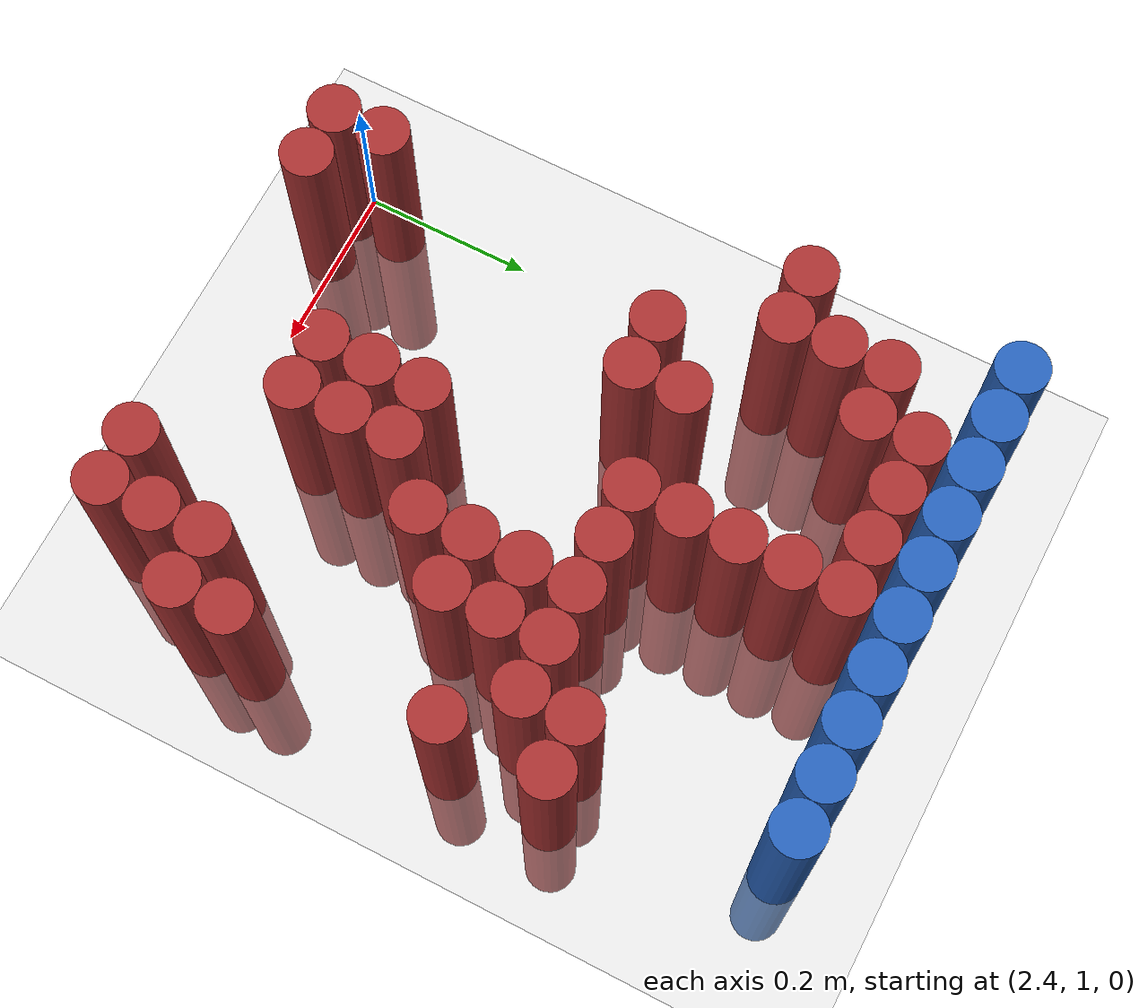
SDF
<sdf version="1.6">
 <world name="default">
  <model name="ground_plane">
   <static>1</static>
   <link name="link">
    <collision name="collision">
     <geometry><plane><normal>0 0 1</normal><size>100 100</size></plane></geometry>
     <surface><friction><ode><mu>100</mu><mu2>50</mu2></ode></friction></surface>
    </collision>
    <visual name="visual">
     <cast_shadows>0</cast_shadows>
     <geometry><plane><normal>0 0 1</normal><size>100 100</size></plane></geometry>
     <material>
      <script><uri>file://media/materials/scripts/gazebo.material</uri><name>Gazebo/Grey</name></script>
     </material>
    </visual>
   </link>
  </model>
  <model name="unit_cylinder_100">
   <static>1</static>
   <pose>2.370000 1.770000 0.000000 0.000000 0.000000 0.000000</pose>
   <link name="link">
    <inertial>
     <mass>1</mass>
     <inertia><ixx>0.145833</ixx><ixy>0</ixy><ixz>0</ixz><iyy>0.145833</iyy><iyz>0</iyz><izz>0.125</izz></inertia>
    </inertial>
    <collision name="collision">
     <geometry><cylinder><radius>0.030000</radius><length>0.5</length></cylinder></geometry>
    </collision>
    <visual name="visual">
     <geometry><cylinder><radius>0.030000</radius><length>0.5</length></cylinder></geometry>
     <material>
      <ambient>0.152000 0.379000 0.720000 1</ambient>
      <diffuse>0.152000 0.379000 0.720000 1</diffuse>
     </material>
     <material>
      <script><name>Gazebo/Grey</name><uri>file://media/materials/scripts/gazebo.material</uri></script>
     </material>
    </visual>
   </link>
  </model>
  <model name="unit_cylinder_101">
   <static>1</static>
   <pose>2.430000 1.770000 0.000000 0.000000 0.000000 0.000000</pose>
   <link name="link">
    <inertial>
     <mass>1</mass>
     <inertia><ixx>0.145833</ixx><ixy>0</ixy><ixz>0</ixz><iyy>0.145833</iyy><iyz>0</iyz><izz>0.125</izz></inertia>
    </inertial>
    <collision name="collision">
     <geometry><cylinder><radius>0.030000</radius><length>0.5</length></cylinder></geometry>
    </collision>
    <visual name="visual">
     <geometry><cylinder><radius>0.030000</radius><length>0.5</length></cylinder></geometry>
     <material>
      <ambient>0.152000 0.379000 0.720000 1</ambient>
      <diffuse>0.152000 0.379000 0.720000 1</diffuse>
     </material>
     <material>
      <script><name>Gazebo/Grey</name><uri>file://media/materials/scripts/gazebo.material</uri></script>
     </material>
    </visual>
   </link>
  </model>
  <model name="unit_cylinder_102">
   <static>1</static>
   <pose>2.490000 1.770000 0.000000 0.000000 0.000000 0.000000</pose>
   <link name="link">
    <inertial>
     <mass>1</mass>
     <inertia><ixx>0.145833</ixx><ixy>0</ixy><ixz>0</ixz><iyy>0.145833</iyy><iyz>0</iyz><izz>0.125</izz></inertia>
    </inertial>
    <collision name="collision">
     <geometry><cylinder><radius>0.030000</radius><length>0.5</length></cylinder></geometry>
    </collision>
    <visual name="visual">
     <geometry><cylinder><radius>0.030000</radius><length>0.5</length></cylinder></geometry>
     <material>
      <ambient>0.152000 0.379000 0.720000 1</ambient>
      <diffuse>0.152000 0.379000 0.720000 1</diffuse>
     </material>
     <material>
      <script><name>Gazebo/Grey</name><uri>file://media/materials/scripts/gazebo.material</uri></script>
     </material>
    </visual>
   </link>
  </model>
  <model name="unit_cylinder_103">
   <static>1</static>
   <pose>2.550000 1.770000 0.000000 0.000000 0.000000 0.000000</pose>
   <link name="link">
    <inertial>
     <mass>1</mass>
     <inertia><ixx>0.145833</ixx><ixy>0</ixy><ixz>0</ixz><iyy>0.145833</iyy><iyz>0</iyz><izz>0.125</izz></inertia>
    </inertial>
    <collision name="collision">
     <geometry><cylinder><radius>0.030000</radius><length>0.5</length></cylinder></geometry>
    </collision>
    <visual name="visual">
     <geometry><cylinder><radius>0.030000</radius><length>0.5</length></cylinder></geometry>
     <material>
      <ambient>0.152000 0.379000 0.720000 1</ambient>
      <diffuse>0.152000 0.379000 0.720000 1</diffuse>
     </material>
     <material>
      <script><name>Gazebo/Grey</name><uri>file://media/materials/scripts/gazebo.material</uri></script>
     </material>
    </visual>
   </link>
  </model>
  <model name="unit_cylinder_104">
   <static>1</static>
   <pose>2.610000 1.770000 0.000000 0.000000 0.000000 0.000000</pose>
   <link name="link">
    <inertial>
     <mass>1</mass>
     <inertia><ixx>0.145833</ixx><ixy>0</ixy><ixz>0</ixz><iyy>0.145833</iyy><iyz>0</iyz><izz>0.125</izz></inertia>
    </inertial>
    <collision name="collision">
     <geometry><cylinder><radius>0.030000</radius><length>0.5</length></cylinder></geometry>
    </collision>
    <visual name="visual">
     <geometry><cylinder><radius>0.030000</radius><length>0.5</length></cylinder></geometry>
     <material>
      <ambient>0.152000 0.379000 0.720000 1</ambient>
      <diffuse>0.152000 0.379000 0.720000 1</diffuse>
     </material>
     <material>
      <script><name>Gazebo/Grey</name><uri>file://media/materials/scripts/gazebo.material</uri></script>
     </material>
    </visual>
   </link>
  </model>
  <model name="unit_cylinder_105">
   <static>1</static>
   <pose>2.670000 1.770000 0.000000 0.000000 0.000000 0.000000</pose>
   <link name="link">
    <inertial>
     <mass>1</mass>
     <inertia><ixx>0.145833</ixx><ixy>0</ixy><ixz>0</ixz><iyy>0.145833</iyy><iyz>0</iyz><izz>0.125</izz></inertia>
    </inertial>
    <collision name="collision">
     <geometry><cylinder><radius>0.030000</radius><length>0.5</length></cylinder></geometry>
    </collision>
    <visual name="visual">
     <geometry><cylinder><radius>0.030000</radius><length>0.5</length></cylinder></geometry>
     <material>
      <ambient>0.152000 0.379000 0.720000 1</ambient>
      <diffuse>0.152000 0.379000 0.720000 1</diffuse>
     </material>
     <material>
      <script><name>Gazebo/Grey</name><uri>file://media/materials/scripts/gazebo.material</uri></script>
     </material>
    </visual>
   </link>
  </model>
  <model name="unit_cylinder_106">
   <static>1</static>
   <pose>2.730000 1.770000 0.000000 0.000000 0.000000 0.000000</pose>
   <link name="link">
    <inertial>
     <mass>1</mass>
     <inertia><ixx>0.145833</ixx><ixy>0</ixy><ixz>0</ixz><iyy>0.145833</iyy><iyz>0</iyz><izz>0.125</izz></inertia>
    </inertial>
    <collision name="collision">
     <geometry><cylinder><radius>0.030000</radius><length>0.5</length></cylinder></geometry>
    </collision>
    <visual name="visual">
     <geometry><cylinder><radius>0.030000</radius><length>0.5</length></cylinder></geometry>
     <material>
      <ambient>0.152000 0.379000 0.720000 1</ambient>
      <diffuse>0.152000 0.379000 0.720000 1</diffuse>
     </material>
     <material>
      <script><name>Gazebo/Grey</name><uri>file://media/materials/scripts/gazebo.material</uri></script>
     </material>
    </visual>
   </link>
  </model>
  <model name="unit_cylinder_107">
   <static>1</static>
   <pose>2.790000 1.770000 0.000000 0.000000 0.000000 0.000000</pose>
   <link name="link">
    <inertial>
     <mass>1</mass>
     <inertia><ixx>0.145833</ixx><ixy>0</ixy><ixz>0</ixz><iyy>0.145833</iyy><iyz>0</iyz><izz>0.125</izz></inertia>
    </inertial>
    <collision name="collision">
     <geometry><cylinder><radius>0.030000</radius><length>0.5</length></cylinder></geometry>
    </collision>
    <visual name="visual">
     <geometry><cylinder><radius>0.030000</radius><length>0.5</length></cylinder></geometry>
     <material>
      <ambient>0.152000 0.379000 0.720000 1</ambient>
      <diffuse>0.152000 0.379000 0.720000 1</diffuse>
     </material>
     <material>
      <script><name>Gazebo/Grey</name><uri>file://media/materials/scripts/gazebo.material</uri></script>
     </material>
    </visual>
   </link>
  </model>
  <model name="unit_cylinder_108">
   <static>1</static>
   <pose>2.850000 1.770000 0.000000 0.000000 0.000000 0.000000</pose>
   <link name="link">
    <inertial>
     <mass>1</mass>
     <inertia><ixx>0.145833</ixx><ixy>0</ixy><ixz>0</ixz><iyy>0.145833</iyy><iyz>0</iyz><izz>0.125</izz></inertia>
    </inertial>
    <collision name="collision">
     <geometry><cylinder><radius>0.030000</radius><length>0.5</length></cylinder></geometry>
    </collision>
    <visual name="visual">
     <geometry><cylinder><radius>0.030000</radius><length>0.5</length></cylinder></geometry>
     <material>
      <ambient>0.152000 0.379000 0.720000 1</ambient>
      <diffuse>0.152000 0.379000 0.720000 1</diffuse>
     </material>
     <material>
      <script><name>Gazebo/Grey</name><uri>file://media/materials/scripts/gazebo.material</uri></script>
     </material>
    </visual>
   </link>
  </model>
  <model name="unit_cylinder_109">
   <static>1</static>
   <pose>2.910000 1.770000 0.000000 0.000000 0.000000 0.000000</pose>
   <link name="link">
    <inertial>
     <mass>1</mass>
     <inertia><ixx>0.145833</ixx><ixy>0</ixy><ixz>0</ixz><iyy>0.145833</iyy><iyz>0</iyz><izz>0.125</izz></inertia>
    </inertial>
    <collision name="collision">
     <geometry><cylinder><radius>0.030000</radius><length>0.5</length></cylinder></geometry>
    </collision>
    <visual name="visual">
     <geometry><cylinder><radius>0.030000</radius><length>0.5</length></cylinder></geometry>
     <material>
      <ambient>0.152000 0.379000 0.720000 1</ambient>
      <diffuse>0.152000 0.379000 0.720000 1</diffuse>
     </material>
     <material>
      <script><name>Gazebo/Grey</name><uri>file://media/materials/scripts/gazebo.material</uri></script>
     </material>
    </visual>
   </link>
  </model>
  <model name="unit_cylinder_127">
   <static>1</static>
   <pose>2.490000 1.710000 0.000000 0.000000 0.000000 0.000000</pose>
   <link name="link">
    <inertial>
     <mass>1</mass>
     <inertia><ixx>0.145833</ixx><ixy>0</ixy><ixz>0</ixz><iyy>0.145833</iyy><iyz>0</iyz><izz>0.125</izz></inertia>
    </inertial>
    <collision name="collision">
     <geometry><cylinder><radius>0.030000</radius><length>0.5</length></cylinder></geometry>
    </collision>
    <visual name="visual">
     <geometry><cylinder><radius>0.030000</radius><length>0.5</length></cylinder></geometry>
     <material>
      <ambient>0.648000 0.192000 0.192000 1</ambient>
      <diffuse>0.648000 0.192000 0.192000 1</diffuse>
     </material>
     <material>
      <script><name>Gazebo/Grey</name><uri>file://media/materials/scripts/gazebo.material</uri></script>
     </material>
    </visual>
   </link>
  </model>
  <model name="unit_cylinder_128">
   <static>1</static>
   <pose>2.550000 1.710000 0.000000 0.000000 0.000000 0.000000</pose>
   <link name="link">
    <inertial>
     <mass>1</mass>
     <inertia><ixx>0.145833</ixx><ixy>0</ixy><ixz>0</ixz><iyy>0.145833</iyy><iyz>0</iyz><izz>0.125</izz></inertia>
    </inertial>
    <collision name="collision">
     <geometry><cylinder><radius>0.030000</radius><length>0.5</length></cylinder></geometry>
    </collision>
    <visual name="visual">
     <geometry><cylinder><radius>0.030000</radius><length>0.5</length></cylinder></geometry>
     <material>
      <ambient>0.648000 0.192000 0.192000 1</ambient>
      <diffuse>0.648000 0.192000 0.192000 1</diffuse>
     </material>
     <material>
      <script><name>Gazebo/Grey</name><uri>file://media/materials/scripts/gazebo.material</uri></script>
     </material>
    </visual>
   </link>
  </model>
  <model name="unit_cylinder_129">
   <static>1</static>
   <pose>2.610000 1.710000 0.000000 0.000000 0.000000 0.000000</pose>
   <link name="link">
    <inertial>
     <mass>1</mass>
     <inertia><ixx>0.145833</ixx><ixy>0</ixy><ixz>0</ixz><iyy>0.145833</iyy><iyz>0</iyz><izz>0.125</izz></inertia>
    </inertial>
    <collision name="collision">
     <geometry><cylinder><radius>0.030000</radius><length>0.5</length></cylinder></geometry>
    </collision>
    <visual name="visual">
     <geometry><cylinder><radius>0.030000</radius><length>0.5</length></cylinder></geometry>
     <material>
      <ambient>0.648000 0.192000 0.192000 1</ambient>
      <diffuse>0.648000 0.192000 0.192000 1</diffuse>
     </material>
     <material>
      <script><name>Gazebo/Grey</name><uri>file://media/materials/scripts/gazebo.material</uri></script>
     </material>
    </visual>
   </link>
  </model>
  <model name="unit_cylinder_130">
   <static>1</static>
   <pose>2.670000 1.710000 0.000000 0.000000 0.000000 0.000000</pose>
   <link name="link">
    <inertial>
     <mass>1</mass>
     <inertia><ixx>0.145833</ixx><ixy>0</ixy><ixz>0</ixz><iyy>0.145833</iyy><iyz>0</iyz><izz>0.125</izz></inertia>
    </inertial>
    <collision name="collision">
     <geometry><cylinder><radius>0.030000</radius><length>0.5</length></cylinder></geometry>
    </collision>
    <visual name="visual">
     <geometry><cylinder><radius>0.030000</radius><length>0.5</length></cylinder></geometry>
     <material>
      <ambient>0.648000 0.192000 0.192000 1</ambient>
      <diffuse>0.648000 0.192000 0.192000 1</diffuse>
     </material>
     <material>
      <script><name>Gazebo/Grey</name><uri>file://media/materials/scripts/gazebo.material</uri></script>
     </material>
    </visual>
   </link>
  </model>
  <model name="unit_cylinder_137">
   <static>1</static>
   <pose>2.430000 1.650000 0.000000 0.000000 0.000000 0.000000</pose>
   <link name="link">
    <inertial>
     <mass>1</mass>
     <inertia><ixx>0.145833</ixx><ixy>0</ixy><ixz>0</ixz><iyy>0.145833</iyy><iyz>0</iyz><izz>0.125</izz></inertia>
    </inertial>
    <collision name="collision">
     <geometry><cylinder><radius>0.030000</radius><length>0.5</length></cylinder></geometry>
    </collision>
    <visual name="visual">
     <geometry><cylinder><radius>0.030000</radius><length>0.5</length></cylinder></geometry>
     <material>
      <ambient>0.648000 0.192000 0.192000 1</ambient>
      <diffuse>0.648000 0.192000 0.192000 1</diffuse>
     </material>
     <material>
      <script><name>Gazebo/Grey</name><uri>file://media/materials/scripts/gazebo.material</uri></script>
     </material>
    </visual>
   </link>
  </model>
  <model name="unit_cylinder_138">
   <static>1</static>
   <pose>2.490000 1.650000 0.000000 0.000000 0.000000 0.000000</pose>
   <link name="link">
    <inertial>
     <mass>1</mass>
     <inertia><ixx>0.145833</ixx><ixy>0</ixy><ixz>0</ixz><iyy>0.145833</iyy><iyz>0</iyz><izz>0.125</izz></inertia>
    </inertial>
    <collision name="collision">
     <geometry><cylinder><radius>0.030000</radius><length>0.5</length></cylinder></geometry>
    </collision>
    <visual name="visual">
     <geometry><cylinder><radius>0.030000</radius><length>0.5</length></cylinder></geometry>
     <material>
      <ambient>0.648000 0.192000 0.192000 1</ambient>
      <diffuse>0.648000 0.192000 0.192000 1</diffuse>
     </material>
     <material>
      <script><name>Gazebo/Grey</name><uri>file://media/materials/scripts/gazebo.material</uri></script>
     </material>
    </visual>
   </link>
  </model>
  <model name="unit_cylinder_139">
   <static>1</static>
   <pose>2.670000 1.650000 0.000000 0.000000 0.000000 0.000000</pose>
   <link name="link">
    <inertial>
     <mass>1</mass>
     <inertia><ixx>0.145833</ixx><ixy>0</ixy><ixz>0</ixz><iyy>0.145833</iyy><iyz>0</iyz><izz>0.125</izz></inertia>
    </inertial>
    <collision name="collision">
     <geometry><cylinder><radius>0.030000</radius><length>0.5</length></cylinder></geometry>
    </collision>
    <visual name="visual">
     <geometry><cylinder><radius>0.030000</radius><length>0.5</length></cylinder></geometry>
     <material>
      <ambient>0.648000 0.192000 0.192000 1</ambient>
      <diffuse>0.648000 0.192000 0.192000 1</diffuse>
     </material>
     <material>
      <script><name>Gazebo/Grey</name><uri>file://media/materials/scripts/gazebo.material</uri></script>
     </material>
    </visual>
   </link>
  </model>
  <model name="unit_cylinder_144">
   <static>1</static>
   <pose>2.430000 1.590000 0.000000 0.000000 0.000000 0.000000</pose>
   <link name="link">
    <inertial>
     <mass>1</mass>
     <inertia><ixx>0.145833</ixx><ixy>0</ixy><ixz>0</ixz><iyy>0.145833</iyy><iyz>0</iyz><izz>0.125</izz></inertia>
    </inertial>
    <collision name="collision">
     <geometry><cylinder><radius>0.030000</radius><length>0.5</length></cylinder></geometry>
    </collision>
    <visual name="visual">
     <geometry><cylinder><radius>0.030000</radius><length>0.5</length></cylinder></geometry>
     <material>
      <ambient>0.648000 0.192000 0.192000 1</ambient>
      <diffuse>0.648000 0.192000 0.192000 1</diffuse>
     </material>
     <material>
      <script><name>Gazebo/Grey</name><uri>file://media/materials/scripts/gazebo.material</uri></script>
     </material>
    </visual>
   </link>
  </model>
  <model name="unit_cylinder_145">
   <static>1</static>
   <pose>2.670000 1.590000 0.000000 0.000000 0.000000 0.000000</pose>
   <link name="link">
    <inertial>
     <mass>1</mass>
     <inertia><ixx>0.145833</ixx><ixy>0</ixy><ixz>0</ixz><iyy>0.145833</iyy><iyz>0</iyz><izz>0.125</izz></inertia>
    </inertial>
    <collision name="collision">
     <geometry><cylinder><radius>0.030000</radius><length>0.5</length></cylinder></geometry>
    </collision>
    <visual name="visual">
     <geometry><cylinder><radius>0.030000</radius><length>0.5</length></cylinder></geometry>
     <material>
      <ambient>0.648000 0.192000 0.192000 1</ambient>
      <diffuse>0.648000 0.192000 0.192000 1</diffuse>
     </material>
     <material>
      <script><name>Gazebo/Grey</name><uri>file://media/materials/scripts/gazebo.material</uri></script>
     </material>
    </visual>
   </link>
  </model>
  <model name="unit_cylinder_157">
   <static>1</static>
   <pose>2.370000 1.530000 0.000000 0.000000 0.000000 0.000000</pose>
   <link name="link">
    <inertial>
     <mass>1</mass>
     <inertia><ixx>0.145833</ixx><ixy>0</ixy><ixz>0</ixz><iyy>0.145833</iyy><iyz>0</iyz><izz>0.125</izz></inertia>
    </inertial>
    <collision name="collision">
     <geometry><cylinder><radius>0.030000</radius><length>0.5</length></cylinder></geometry>
    </collision>
    <visual name="visual">
     <geometry><cylinder><radius>0.030000</radius><length>0.5</length></cylinder></geometry>
     <material>
      <ambient>0.648000 0.192000 0.192000 1</ambient>
      <diffuse>0.648000 0.192000 0.192000 1</diffuse>
     </material>
     <material>
      <script><name>Gazebo/Grey</name><uri>file://media/materials/scripts/gazebo.material</uri></script>
     </material>
    </visual>
   </link>
  </model>
  <model name="unit_cylinder_158">
   <static>1</static>
   <pose>2.430000 1.530000 0.000000 0.000000 0.000000 0.000000</pose>
   <link name="link">
    <inertial>
     <mass>1</mass>
     <inertia><ixx>0.145833</ixx><ixy>0</ixy><ixz>0</ixz><iyy>0.145833</iyy><iyz>0</iyz><izz>0.125</izz></inertia>
    </inertial>
    <collision name="collision">
     <geometry><cylinder><radius>0.030000</radius><length>0.5</length></cylinder></geometry>
    </collision>
    <visual name="visual">
     <geometry><cylinder><radius>0.030000</radius><length>0.5</length></cylinder></geometry>
     <material>
      <ambient>0.648000 0.192000 0.192000 1</ambient>
      <diffuse>0.648000 0.192000 0.192000 1</diffuse>
     </material>
     <material>
      <script><name>Gazebo/Grey</name><uri>file://media/materials/scripts/gazebo.material</uri></script>
     </material>
    </visual>
   </link>
  </model>
  <model name="unit_cylinder_159">
   <static>1</static>
   <pose>2.670000 1.530000 0.000000 0.000000 0.000000 0.000000</pose>
   <link name="link">
    <inertial>
     <mass>1</mass>
     <inertia><ixx>0.145833</ixx><ixy>0</ixy><ixz>0</ixz><iyy>0.145833</iyy><iyz>0</iyz><izz>0.125</izz></inertia>
    </inertial>
    <collision name="collision">
     <geometry><cylinder><radius>0.030000</radius><length>0.5</length></cylinder></geometry>
    </collision>
    <visual name="visual">
     <geometry><cylinder><radius>0.030000</radius><length>0.5</length></cylinder></geometry>
     <material>
      <ambient>0.648000 0.192000 0.192000 1</ambient>
      <diffuse>0.648000 0.192000 0.192000 1</diffuse>
     </material>
     <material>
      <script><name>Gazebo/Grey</name><uri>file://media/materials/scripts/gazebo.material</uri></script>
     </material>
    </visual>
   </link>
  </model>
  <model name="unit_cylinder_160">
   <static>1</static>
   <pose>2.910000 1.530000 0.000000 0.000000 0.000000 0.000000</pose>
   <link name="link">
    <inertial>
     <mass>1</mass>
     <inertia><ixx>0.145833</ixx><ixy>0</ixy><ixz>0</ixz><iyy>0.145833</iyy><iyz>0</iyz><izz>0.125</izz></inertia>
    </inertial>
    <collision name="collision">
     <geometry><cylinder><radius>0.030000</radius><length>0.5</length></cylinder></geometry>
    </collision>
    <visual name="visual">
     <geometry><cylinder><radius>0.030000</radius><length>0.5</length></cylinder></geometry>
     <material>
      <ambient>0.648000 0.192000 0.192000 1</ambient>
      <diffuse>0.648000 0.192000 0.192000 1</diffuse>
     </material>
     <material>
      <script><name>Gazebo/Grey</name><uri>file://media/materials/scripts/gazebo.material</uri></script>
     </material>
    </visual>
   </link>
  </model>
  <model name="unit_cylinder_161">
   <static>1</static>
   <pose>2.970000 1.530000 0.000000 0.000000 0.000000 0.000000</pose>
   <link name="link">
    <inertial>
     <mass>1</mass>
     <inertia><ixx>0.145833</ixx><ixy>0</ixy><ixz>0</ixz><iyy>0.145833</iyy><iyz>0</iyz><izz>0.125</izz></inertia>
    </inertial>
    <collision name="collision">
     <geometry><cylinder><radius>0.030000</radius><length>0.5</length></cylinder></geometry>
    </collision>
    <visual name="visual">
     <geometry><cylinder><radius>0.030000</radius><length>0.5</length></cylinder></geometry>
     <material>
      <ambient>0.648000 0.192000 0.192000 1</ambient>
      <diffuse>0.648000 0.192000 0.192000 1</diffuse>
     </material>
     <material>
      <script><name>Gazebo/Grey</name><uri>file://media/materials/scripts/gazebo.material</uri></script>
     </material>
    </visual>
   </link>
  </model>
  <model name="unit_cylinder_171">
   <static>1</static>
   <pose>2.550000 1.470000 0.000000 0.000000 0.000000 0.000000</pose>
   <link name="link">
    <inertial>
     <mass>1</mass>
     <inertia><ixx>0.145833</ixx><ixy>0</ixy><ixz>0</ixz><iyy>0.145833</iyy><iyz>0</iyz><izz>0.125</izz></inertia>
    </inertial>
    <collision name="collision">
     <geometry><cylinder><radius>0.030000</radius><length>0.5</length></cylinder></geometry>
    </collision>
    <visual name="visual">
     <geometry><cylinder><radius>0.030000</radius><length>0.5</length></cylinder></geometry>
     <material>
      <ambient>0.648000 0.192000 0.192000 1</ambient>
      <diffuse>0.648000 0.192000 0.192000 1</diffuse>
     </material>
     <material>
      <script><name>Gazebo/Grey</name><uri>file://media/materials/scripts/gazebo.material</uri></script>
     </material>
    </visual>
   </link>
  </model>
  <model name="unit_cylinder_172">
   <static>1</static>
   <pose>2.670000 1.470000 0.000000 0.000000 0.000000 0.000000</pose>
   <link name="link">
    <inertial>
     <mass>1</mass>
     <inertia><ixx>0.145833</ixx><ixy>0</ixy><ixz>0</ixz><iyy>0.145833</iyy><iyz>0</iyz><izz>0.125</izz></inertia>
    </inertial>
    <collision name="collision">
     <geometry><cylinder><radius>0.030000</radius><length>0.5</length></cylinder></geometry>
    </collision>
    <visual name="visual">
     <geometry><cylinder><radius>0.030000</radius><length>0.5</length></cylinder></geometry>
     <material>
      <ambient>0.648000 0.192000 0.192000 1</ambient>
      <diffuse>0.648000 0.192000 0.192000 1</diffuse>
     </material>
     <material>
      <script><name>Gazebo/Grey</name><uri>file://media/materials/scripts/gazebo.material</uri></script>
     </material>
    </visual>
   </link>
  </model>
  <model name="unit_cylinder_173">
   <static>1</static>
   <pose>2.730000 1.470000 0.000000 0.000000 0.000000 0.000000</pose>
   <link name="link">
    <inertial>
     <mass>1</mass>
     <inertia><ixx>0.145833</ixx><ixy>0</ixy><ixz>0</ixz><iyy>0.145833</iyy><iyz>0</iyz><izz>0.125</izz></inertia>
    </inertial>
    <collision name="collision">
     <geometry><cylinder><radius>0.030000</radius><length>0.5</length></cylinder></geometry>
    </collision>
    <visual name="visual">
     <geometry><cylinder><radius>0.030000</radius><length>0.5</length></cylinder></geometry>
     <material>
      <ambient>0.648000 0.192000 0.192000 1</ambient>
      <diffuse>0.648000 0.192000 0.192000 1</diffuse>
     </material>
     <material>
      <script><name>Gazebo/Grey</name><uri>file://media/materials/scripts/gazebo.material</uri></script>
     </material>
    </visual>
   </link>
  </model>
  <model name="unit_cylinder_174">
   <static>1</static>
   <pose>2.790000 1.470000 0.000000 0.000000 0.000000 0.000000</pose>
   <link name="link">
    <inertial>
     <mass>1</mass>
     <inertia><ixx>0.145833</ixx><ixy>0</ixy><ixz>0</ixz><iyy>0.145833</iyy><iyz>0</iyz><izz>0.125</izz></inertia>
    </inertial>
    <collision name="collision">
     <geometry><cylinder><radius>0.030000</radius><length>0.5</length></cylinder></geometry>
    </collision>
    <visual name="visual">
     <geometry><cylinder><radius>0.030000</radius><length>0.5</length></cylinder></geometry>
     <material>
      <ambient>0.648000 0.192000 0.192000 1</ambient>
      <diffuse>0.648000 0.192000 0.192000 1</diffuse>
     </material>
     <material>
      <script><name>Gazebo/Grey</name><uri>file://media/materials/scripts/gazebo.material</uri></script>
     </material>
    </visual>
   </link>
  </model>
  <model name="unit_cylinder_175">
   <static>1</static>
   <pose>2.850000 1.470000 0.000000 0.000000 0.000000 0.000000</pose>
   <link name="link">
    <inertial>
     <mass>1</mass>
     <inertia><ixx>0.145833</ixx><ixy>0</ixy><ixz>0</ixz><iyy>0.145833</iyy><iyz>0</iyz><izz>0.125</izz></inertia>
    </inertial>
    <collision name="collision">
     <geometry><cylinder><radius>0.030000</radius><length>0.5</length></cylinder></geometry>
    </collision>
    <visual name="visual">
     <geometry><cylinder><radius>0.030000</radius><length>0.5</length></cylinder></geometry>
     <material>
      <ambient>0.648000 0.192000 0.192000 1</ambient>
      <diffuse>0.648000 0.192000 0.192000 1</diffuse>
     </material>
     <material>
      <script><name>Gazebo/Grey</name><uri>file://media/materials/scripts/gazebo.material</uri></script>
     </material>
    </visual>
   </link>
  </model>
  <model name="unit_cylinder_176">
   <static>1</static>
   <pose>2.910000 1.470000 0.000000 0.000000 0.000000 0.000000</pose>
   <link name="link">
    <inertial>
     <mass>1</mass>
     <inertia><ixx>0.145833</ixx><ixy>0</ixy><ixz>0</ixz><iyy>0.145833</iyy><iyz>0</iyz><izz>0.125</izz></inertia>
    </inertial>
    <collision name="collision">
     <geometry><cylinder><radius>0.030000</radius><length>0.5</length></cylinder></geometry>
    </collision>
    <visual name="visual">
     <geometry><cylinder><radius>0.030000</radius><length>0.5</length></cylinder></geometry>
     <material>
      <ambient>0.648000 0.192000 0.192000 1</ambient>
      <diffuse>0.648000 0.192000 0.192000 1</diffuse>
     </material>
     <material>
      <script><name>Gazebo/Grey</name><uri>file://media/materials/scripts/gazebo.material</uri></script>
     </material>
    </visual>
   </link>
  </model>
  <model name="unit_cylinder_188">
   <static>1</static>
   <pose>2.490000 1.410000 0.000000 0.000000 0.000000 0.000000</pose>
   <link name="link">
    <inertial>
     <mass>1</mass>
     <inertia><ixx>0.145833</ixx><ixy>0</ixy><ixz>0</ixz><iyy>0.145833</iyy><iyz>0</iyz><izz>0.125</izz></inertia>
    </inertial>
    <collision name="collision">
     <geometry><cylinder><radius>0.030000</radius><length>0.5</length></cylinder></geometry>
    </collision>
    <visual name="visual">
     <geometry><cylinder><radius>0.030000</radius><length>0.5</length></cylinder></geometry>
     <material>
      <ambient>0.648000 0.192000 0.192000 1</ambient>
      <diffuse>0.648000 0.192000 0.192000 1</diffuse>
     </material>
     <material>
      <script><name>Gazebo/Grey</name><uri>file://media/materials/scripts/gazebo.material</uri></script>
     </material>
    </visual>
   </link>
  </model>
  <model name="unit_cylinder_189">
   <static>1</static>
   <pose>2.550000 1.410000 0.000000 0.000000 0.000000 0.000000</pose>
   <link name="link">
    <inertial>
     <mass>1</mass>
     <inertia><ixx>0.145833</ixx><ixy>0</ixy><ixz>0</ixz><iyy>0.145833</iyy><iyz>0</iyz><izz>0.125</izz></inertia>
    </inertial>
    <collision name="collision">
     <geometry><cylinder><radius>0.030000</radius><length>0.5</length></cylinder></geometry>
    </collision>
    <visual name="visual">
     <geometry><cylinder><radius>0.030000</radius><length>0.5</length></cylinder></geometry>
     <material>
      <ambient>0.648000 0.192000 0.192000 1</ambient>
      <diffuse>0.648000 0.192000 0.192000 1</diffuse>
     </material>
     <material>
      <script><name>Gazebo/Grey</name><uri>file://media/materials/scripts/gazebo.material</uri></script>
     </material>
    </visual>
   </link>
  </model>
  <model name="unit_cylinder_190">
   <static>1</static>
   <pose>2.790000 1.410000 0.000000 0.000000 0.000000 0.000000</pose>
   <link name="link">
    <inertial>
     <mass>1</mass>
     <inertia><ixx>0.145833</ixx><ixy>0</ixy><ixz>0</ixz><iyy>0.145833</iyy><iyz>0</iyz><izz>0.125</izz></inertia>
    </inertial>
    <collision name="collision">
     <geometry><cylinder><radius>0.030000</radius><length>0.5</length></cylinder></geometry>
    </collision>
    <visual name="visual">
     <geometry><cylinder><radius>0.030000</radius><length>0.5</length></cylinder></geometry>
     <material>
      <ambient>0.648000 0.192000 0.192000 1</ambient>
      <diffuse>0.648000 0.192000 0.192000 1</diffuse>
     </material>
     <material>
      <script><name>Gazebo/Grey</name><uri>file://media/materials/scripts/gazebo.material</uri></script>
     </material>
    </visual>
   </link>
  </model>
  <model name="unit_cylinder_191">
   <static>1</static>
   <pose>2.850000 1.410000 0.000000 0.000000 0.000000 0.000000</pose>
   <link name="link">
    <inertial>
     <mass>1</mass>
     <inertia><ixx>0.145833</ixx><ixy>0</ixy><ixz>0</ixz><iyy>0.145833</iyy><iyz>0</iyz><izz>0.125</izz></inertia>
    </inertial>
    <collision name="collision">
     <geometry><cylinder><radius>0.030000</radius><length>0.5</length></cylinder></geometry>
    </collision>
    <visual name="visual">
     <geometry><cylinder><radius>0.030000</radius><length>0.5</length></cylinder></geometry>
     <material>
      <ambient>0.648000 0.192000 0.192000 1</ambient>
      <diffuse>0.648000 0.192000 0.192000 1</diffuse>
     </material>
     <material>
      <script><name>Gazebo/Grey</name><uri>file://media/materials/scripts/gazebo.material</uri></script>
     </material>
    </visual>
   </link>
  </model>
  <model name="unit_cylinder_192">
   <static>1</static>
   <pose>2.970000 1.410000 0.000000 0.000000 0.000000 0.000000</pose>
   <link name="link">
    <inertial>
     <mass>1</mass>
     <inertia><ixx>0.145833</ixx><ixy>0</ixy><ixz>0</ixz><iyy>0.145833</iyy><iyz>0</iyz><izz>0.125</izz></inertia>
    </inertial>
    <collision name="collision">
     <geometry><cylinder><radius>0.030000</radius><length>0.5</length></cylinder></geometry>
    </collision>
    <visual name="visual">
     <geometry><cylinder><radius>0.030000</radius><length>0.5</length></cylinder></geometry>
     <material>
      <ambient>0.648000 0.192000 0.192000 1</ambient>
      <diffuse>0.648000 0.192000 0.192000 1</diffuse>
     </material>
     <material>
      <script><name>Gazebo/Grey</name><uri>file://media/materials/scripts/gazebo.material</uri></script>
     </material>
    </visual>
   </link>
  </model>
  <model name="unit_cylinder_198">
   <static>1</static>
   <pose>2.790000 1.350000 0.000000 0.000000 0.000000 0.000000</pose>
   <link name="link">
    <inertial>
     <mass>1</mass>
     <inertia><ixx>0.145833</ixx><ixy>0</ixy><ixz>0</ixz><iyy>0.145833</iyy><iyz>0</iyz><izz>0.125</izz></inertia>
    </inertial>
    <collision name="collision">
     <geometry><cylinder><radius>0.030000</radius><length>0.5</length></cylinder></geometry>
    </collision>
    <visual name="visual">
     <geometry><cylinder><radius>0.030000</radius><length>0.5</length></cylinder></geometry>
     <material>
      <ambient>0.648000 0.192000 0.192000 1</ambient>
      <diffuse>0.648000 0.192000 0.192000 1</diffuse>
     </material>
     <material>
      <script><name>Gazebo/Grey</name><uri>file://media/materials/scripts/gazebo.material</uri></script>
     </material>
    </visual>
   </link>
  </model>
  <model name="unit_cylinder_199">
   <static>1</static>
   <pose>2.850000 1.350000 0.000000 0.000000 0.000000 0.000000</pose>
   <link name="link">
    <inertial>
     <mass>1</mass>
     <inertia><ixx>0.145833</ixx><ixy>0</ixy><ixz>0</ixz><iyy>0.145833</iyy><iyz>0</iyz><izz>0.125</izz></inertia>
    </inertial>
    <collision name="collision">
     <geometry><cylinder><radius>0.030000</radius><length>0.5</length></cylinder></geometry>
    </collision>
    <visual name="visual">
     <geometry><cylinder><radius>0.030000</radius><length>0.5</length></cylinder></geometry>
     <material>
      <ambient>0.648000 0.192000 0.192000 1</ambient>
      <diffuse>0.648000 0.192000 0.192000 1</diffuse>
     </material>
     <material>
      <script><name>Gazebo/Grey</name><uri>file://media/materials/scripts/gazebo.material</uri></script>
     </material>
    </visual>
   </link>
  </model>
  <model name="unit_cylinder_204">
   <static>1</static>
   <pose>2.790000 1.290000 0.000000 0.000000 0.000000 0.000000</pose>
   <link name="link">
    <inertial>
     <mass>1</mass>
     <inertia><ixx>0.145833</ixx><ixy>0</ixy><ixz>0</ixz><iyy>0.145833</iyy><iyz>0</iyz><izz>0.125</izz></inertia>
    </inertial>
    <collision name="collision">
     <geometry><cylinder><radius>0.030000</radius><length>0.5</length></cylinder></geometry>
    </collision>
    <visual name="visual">
     <geometry><cylinder><radius>0.030000</radius><length>0.5</length></cylinder></geometry>
     <material>
      <ambient>0.648000 0.192000 0.192000 1</ambient>
      <diffuse>0.648000 0.192000 0.192000 1</diffuse>
     </material>
     <material>
      <script><name>Gazebo/Grey</name><uri>file://media/materials/scripts/gazebo.material</uri></script>
     </material>
    </visual>
   </link>
  </model>
  <model name="unit_cylinder_210">
   <static>1</static>
   <pose>2.670000 1.230000 0.000000 0.000000 0.000000 0.000000</pose>
   <link name="link">
    <inertial>
     <mass>1</mass>
     <inertia><ixx>0.145833</ixx><ixy>0</ixy><ixz>0</ixz><iyy>0.145833</iyy><iyz>0</iyz><izz>0.125</izz></inertia>
    </inertial>
    <collision name="collision">
     <geometry><cylinder><radius>0.030000</radius><length>0.5</length></cylinder></geometry>
    </collision>
    <visual name="visual">
     <geometry><cylinder><radius>0.030000</radius><length>0.5</length></cylinder></geometry>
     <material>
      <ambient>0.648000 0.192000 0.192000 1</ambient>
      <diffuse>0.648000 0.192000 0.192000 1</diffuse>
     </material>
     <material>
      <script><name>Gazebo/Grey</name><uri>file://media/materials/scripts/gazebo.material</uri></script>
     </material>
    </visual>
   </link>
  </model>
  <model name="unit_cylinder_211">
   <static>1</static>
   <pose>2.730000 1.230000 0.000000 0.000000 0.000000 0.000000</pose>
   <link name="link">
    <inertial>
     <mass>1</mass>
     <inertia><ixx>0.145833</ixx><ixy>0</ixy><ixz>0</ixz><iyy>0.145833</iyy><iyz>0</iyz><izz>0.125</izz></inertia>
    </inertial>
    <collision name="collision">
     <geometry><cylinder><radius>0.030000</radius><length>0.5</length></cylinder></geometry>
    </collision>
    <visual name="visual">
     <geometry><cylinder><radius>0.030000</radius><length>0.5</length></cylinder></geometry>
     <material>
      <ambient>0.648000 0.192000 0.192000 1</ambient>
      <diffuse>0.648000 0.192000 0.192000 1</diffuse>
     </material>
     <material>
      <script><name>Gazebo/Grey</name><uri>file://media/materials/scripts/gazebo.material</uri></script>
     </material>
    </visual>
   </link>
  </model>
  <model name="unit_cylinder_215">
   <static>1</static>
   <pose>2.670000 1.170000 0.000000 0.000000 0.000000 0.000000</pose>
   <link name="link">
    <inertial>
     <mass>1</mass>
     <inertia><ixx>0.145833</ixx><ixy>0</ixy><ixz>0</ixz><iyy>0.145833</iyy><iyz>0</iyz><izz>0.125</izz></inertia>
    </inertial>
    <collision name="collision">
     <geometry><cylinder><radius>0.030000</radius><length>0.5</length></cylinder></geometry>
    </collision>
    <visual name="visual">
     <geometry><cylinder><radius>0.030000</radius><length>0.5</length></cylinder></geometry>
     <material>
      <ambient>0.648000 0.192000 0.192000 1</ambient>
      <diffuse>0.648000 0.192000 0.192000 1</diffuse>
     </material>
     <material>
      <script><name>Gazebo/Grey</name><uri>file://media/materials/scripts/gazebo.material</uri></script>
     </material>
    </visual>
   </link>
  </model>
  <model name="unit_cylinder_216">
   <static>1</static>
   <pose>2.730000 1.170000 0.000000 0.000000 0.000000 0.000000</pose>
   <link name="link">
    <inertial>
     <mass>1</mass>
     <inertia><ixx>0.145833</ixx><ixy>0</ixy><ixz>0</ixz><iyy>0.145833</iyy><iyz>0</iyz><izz>0.125</izz></inertia>
    </inertial>
    <collision name="collision">
     <geometry><cylinder><radius>0.030000</radius><length>0.5</length></cylinder></geometry>
    </collision>
    <visual name="visual">
     <geometry><cylinder><radius>0.030000</radius><length>0.5</length></cylinder></geometry>
     <material>
      <ambient>0.648000 0.192000 0.192000 1</ambient>
      <diffuse>0.648000 0.192000 0.192000 1</diffuse>
     </material>
     <material>
      <script><name>Gazebo/Grey</name><uri>file://media/materials/scripts/gazebo.material</uri></script>
     </material>
    </visual>
   </link>
  </model>
  <model name="unit_cylinder_217">
   <static>1</static>
   <pose>2.970000 1.170000 0.000000 0.000000 0.000000 0.000000</pose>
   <link name="link">
    <inertial>
     <mass>1</mass>
     <inertia><ixx>0.145833</ixx><ixy>0</ixy><ixz>0</ixz><iyy>0.145833</iyy><iyz>0</iyz><izz>0.125</izz></inertia>
    </inertial>
    <collision name="collision">
     <geometry><cylinder><radius>0.030000</radius><length>0.5</length></cylinder></geometry>
    </collision>
    <visual name="visual">
     <geometry><cylinder><radius>0.030000</radius><length>0.5</length></cylinder></geometry>
     <material>
      <ambient>0.648000 0.192000 0.192000 1</ambient>
      <diffuse>0.648000 0.192000 0.192000 1</diffuse>
     </material>
     <material>
      <script><name>Gazebo/Grey</name><uri>file://media/materials/scripts/gazebo.material</uri></script>
     </material>
    </visual>
   </link>
  </model>
  <model name="unit_cylinder_221">
   <static>1</static>
   <pose>2.670000 1.110000 0.000000 0.000000 0.000000 0.000000</pose>
   <link name="link">
    <inertial>
     <mass>1</mass>
     <inertia><ixx>0.145833</ixx><ixy>0</ixy><ixz>0</ixz><iyy>0.145833</iyy><iyz>0</iyz><izz>0.125</izz></inertia>
    </inertial>
    <collision name="collision">
     <geometry><cylinder><radius>0.030000</radius><length>0.5</length></cylinder></geometry>
    </collision>
    <visual name="visual">
     <geometry><cylinder><radius>0.030000</radius><length>0.5</length></cylinder></geometry>
     <material>
      <ambient>0.648000 0.192000 0.192000 1</ambient>
      <diffuse>0.648000 0.192000 0.192000 1</diffuse>
     </material>
     <material>
      <script><name>Gazebo/Grey</name><uri>file://media/materials/scripts/gazebo.material</uri></script>
     </material>
    </visual>
   </link>
  </model>
  <model name="unit_cylinder_222">
   <static>1</static>
   <pose>2.730000 1.110000 0.000000 0.000000 0.000000 0.000000</pose>
   <link name="link">
    <inertial>
     <mass>1</mass>
     <inertia><ixx>0.145833</ixx><ixy>0</ixy><ixz>0</ixz><iyy>0.145833</iyy><iyz>0</iyz><izz>0.125</izz></inertia>
    </inertial>
    <collision name="collision">
     <geometry><cylinder><radius>0.030000</radius><length>0.5</length></cylinder></geometry>
    </collision>
    <visual name="visual">
     <geometry><cylinder><radius>0.030000</radius><length>0.5</length></cylinder></geometry>
     <material>
      <ambient>0.648000 0.192000 0.192000 1</ambient>
      <diffuse>0.648000 0.192000 0.192000 1</diffuse>
     </material>
     <material>
      <script><name>Gazebo/Grey</name><uri>file://media/materials/scripts/gazebo.material</uri></script>
     </material>
    </visual>
   </link>
  </model>
  <model name="unit_cylinder_223">
   <static>1</static>
   <pose>2.910000 1.110000 0.000000 0.000000 0.000000 0.000000</pose>
   <link name="link">
    <inertial>
     <mass>1</mass>
     <inertia><ixx>0.145833</ixx><ixy>0</ixy><ixz>0</ixz><iyy>0.145833</iyy><iyz>0</iyz><izz>0.125</izz></inertia>
    </inertial>
    <collision name="collision">
     <geometry><cylinder><radius>0.030000</radius><length>0.5</length></cylinder></geometry>
    </collision>
    <visual name="visual">
     <geometry><cylinder><radius>0.030000</radius><length>0.5</length></cylinder></geometry>
     <material>
      <ambient>0.648000 0.192000 0.192000 1</ambient>
      <diffuse>0.648000 0.192000 0.192000 1</diffuse>
     </material>
     <material>
      <script><name>Gazebo/Grey</name><uri>file://media/materials/scripts/gazebo.material</uri></script>
     </material>
    </visual>
   </link>
  </model>
  <model name="unit_cylinder_224">
   <static>1</static>
   <pose>2.970000 1.110000 0.000000 0.000000 0.000000 0.000000</pose>
   <link name="link">
    <inertial>
     <mass>1</mass>
     <inertia><ixx>0.145833</ixx><ixy>0</ixy><ixz>0</ixz><iyy>0.145833</iyy><iyz>0</iyz><izz>0.125</izz></inertia>
    </inertial>
    <collision name="collision">
     <geometry><cylinder><radius>0.030000</radius><length>0.5</length></cylinder></geometry>
    </collision>
    <visual name="visual">
     <geometry><cylinder><radius>0.030000</radius><length>0.5</length></cylinder></geometry>
     <material>
      <ambient>0.648000 0.192000 0.192000 1</ambient>
      <diffuse>0.648000 0.192000 0.192000 1</diffuse>
     </material>
     <material>
      <script><name>Gazebo/Grey</name><uri>file://media/materials/scripts/gazebo.material</uri></script>
     </material>
    </visual>
   </link>
  </model>
  <model name="unit_cylinder_228">
   <static>1</static>
   <pose>2.430000 1.050000 0.000000 0.000000 0.000000 0.000000</pose>
   <link name="link">
    <inertial>
     <mass>1</mass>
     <inertia><ixx>0.145833</ixx><ixy>0</ixy><ixz>0</ixz><iyy>0.145833</iyy><iyz>0</iyz><izz>0.125</izz></inertia>
    </inertial>
    <collision name="collision">
     <geometry><cylinder><radius>0.030000</radius><length>0.5</length></cylinder></geometry>
    </collision>
    <visual name="visual">
     <geometry><cylinder><radius>0.030000</radius><length>0.5</length></cylinder></geometry>
     <material>
      <ambient>0.648000 0.192000 0.192000 1</ambient>
      <diffuse>0.648000 0.192000 0.192000 1</diffuse>
     </material>
     <material>
      <script><name>Gazebo/Grey</name><uri>file://media/materials/scripts/gazebo.material</uri></script>
     </material>
    </visual>
   </link>
  </model>
  <model name="unit_cylinder_229">
   <static>1</static>
   <pose>2.910000 1.050000 0.000000 0.000000 0.000000 0.000000</pose>
   <link name="link">
    <inertial>
     <mass>1</mass>
     <inertia><ixx>0.145833</ixx><ixy>0</ixy><ixz>0</ixz><iyy>0.145833</iyy><iyz>0</iyz><izz>0.125</izz></inertia>
    </inertial>
    <collision name="collision">
     <geometry><cylinder><radius>0.030000</radius><length>0.5</length></cylinder></geometry>
    </collision>
    <visual name="visual">
     <geometry><cylinder><radius>0.030000</radius><length>0.5</length></cylinder></geometry>
     <material>
      <ambient>0.648000 0.192000 0.192000 1</ambient>
      <diffuse>0.648000 0.192000 0.192000 1</diffuse>
     </material>
     <material>
      <script><name>Gazebo/Grey</name><uri>file://media/materials/scripts/gazebo.material</uri></script>
     </material>
    </visual>
   </link>
  </model>
  <model name="unit_cylinder_234">
   <static>1</static>
   <pose>2.430000 0.990000 0.000000 0.000000 0.000000 0.000000</pose>
   <link name="link">
    <inertial>
     <mass>1</mass>
     <inertia><ixx>0.145833</ixx><ixy>0</ixy><ixz>0</ixz><iyy>0.145833</iyy><iyz>0</iyz><izz>0.125</izz></inertia>
    </inertial>
    <collision name="collision">
     <geometry><cylinder><radius>0.030000</radius><length>0.5</length></cylinder></geometry>
    </collision>
    <visual name="visual">
     <geometry><cylinder><radius>0.030000</radius><length>0.5</length></cylinder></geometry>
     <material>
      <ambient>0.648000 0.192000 0.192000 1</ambient>
      <diffuse>0.648000 0.192000 0.192000 1</diffuse>
     </material>
     <material>
      <script><name>Gazebo/Grey</name><uri>file://media/materials/scripts/gazebo.material</uri></script>
     </material>
    </visual>
   </link>
  </model>
  <model name="unit_cylinder_235">
   <static>1</static>
   <pose>2.490000 0.990000 0.000000 0.000000 0.000000 0.000000</pose>
   <link name="link">
    <inertial>
     <mass>1</mass>
     <inertia><ixx>0.145833</ixx><ixy>0</ixy><ixz>0</ixz><iyy>0.145833</iyy><iyz>0</iyz><izz>0.125</izz></inertia>
    </inertial>
    <collision name="collision">
     <geometry><cylinder><radius>0.030000</radius><length>0.5</length></cylinder></geometry>
    </collision>
    <visual name="visual">
     <geometry><cylinder><radius>0.030000</radius><length>0.5</length></cylinder></geometry>
     <material>
      <ambient>0.648000 0.192000 0.192000 1</ambient>
      <diffuse>0.648000 0.192000 0.192000 1</diffuse>
     </material>
     <material>
      <script><name>Gazebo/Grey</name><uri>file://media/materials/scripts/gazebo.material</uri></script>
     </material>
    </visual>
   </link>
  </model>
  <model name="unit_cylinder_236">
   <static>1</static>
   <pose>2.850000 0.990000 0.000000 0.000000 0.000000 0.000000</pose>
   <link name="link">
    <inertial>
     <mass>1</mass>
     <inertia><ixx>0.145833</ixx><ixy>0</ixy><ixz>0</ixz><iyy>0.145833</iyy><iyz>0</iyz><izz>0.125</izz></inertia>
    </inertial>
    <collision name="collision">
     <geometry><cylinder><radius>0.030000</radius><length>0.5</length></cylinder></geometry>
    </collision>
    <visual name="visual">
     <geometry><cylinder><radius>0.030000</radius><length>0.5</length></cylinder></geometry>
     <material>
      <ambient>0.648000 0.192000 0.192000 1</ambient>
      <diffuse>0.648000 0.192000 0.192000 1</diffuse>
     </material>
     <material>
      <script><name>Gazebo/Grey</name><uri>file://media/materials/scripts/gazebo.material</uri></script>
     </material>
    </visual>
   </link>
  </model>
  <model name="unit_cylinder_237">
   <static>1</static>
   <pose>2.910000 0.990000 0.000000 0.000000 0.000000 0.000000</pose>
   <link name="link">
    <inertial>
     <mass>1</mass>
     <inertia><ixx>0.145833</ixx><ixy>0</ixy><ixz>0</ixz><iyy>0.145833</iyy><iyz>0</iyz><izz>0.125</izz></inertia>
    </inertial>
    <collision name="collision">
     <geometry><cylinder><radius>0.030000</radius><length>0.5</length></cylinder></geometry>
    </collision>
    <visual name="visual">
     <geometry><cylinder><radius>0.030000</radius><length>0.5</length></cylinder></geometry>
     <material>
      <ambient>0.648000 0.192000 0.192000 1</ambient>
      <diffuse>0.648000 0.192000 0.192000 1</diffuse>
     </material>
     <material>
      <script><name>Gazebo/Grey</name><uri>file://media/materials/scripts/gazebo.material</uri></script>
     </material>
    </visual>
   </link>
  </model>
 </world>
</sdf>
